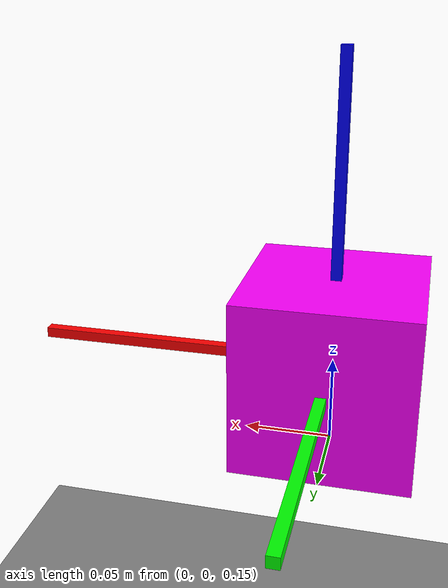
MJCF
<mujoco>
    <worldbody>

        <body name="cube" pos="0 0 0.2">
            <geom type="box" size="0.05 0.05 0.05" density="500" rgba="1 0 1 1" />
            <joint name="cube_joing" type="free" />
        </body>

        <body name="floor" pos="0 0 0">
            <geom type="plane" size="0.5 0.5 0.1" />
        </body>
    <body mocap="true" name="mocap" pos="0.0 0.0 0.2" quat="1.0 0.0 0.0 0.0"><site pos="0 0 0.075" size="0.003 0.003 0.1" type="box" name="mocap_site1" rgba="0 0 1 1" /><site pos="0 0.075 0" size="0.003 0.1 0.003" type="box" name="mocap_site2" rgba="0 1 0 1" /><site pos="0.075 0 0" size="0.1 0.003 0.003" type="box" name="mocap_site3" rgba="1 0 0 1" /></body></worldbody>
<equality><weld body1="mocap" body2="cube" /></equality></mujoco>
